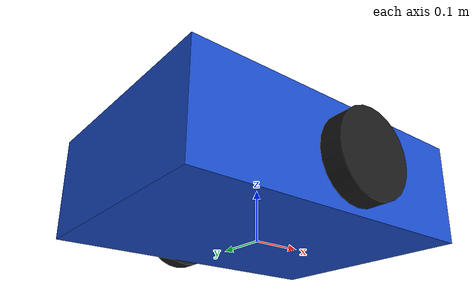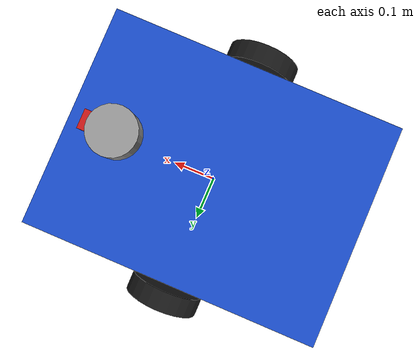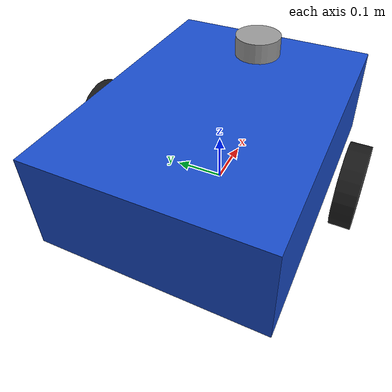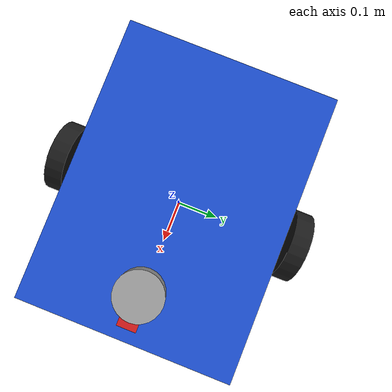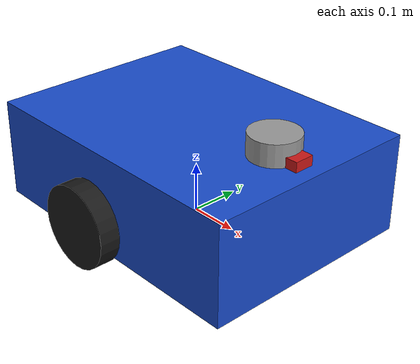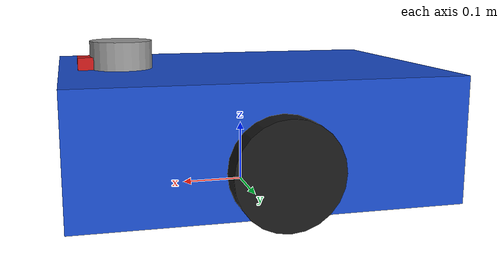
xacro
<?xml version="1.0"?>

<robot name="rovo_robot"
       xmlns:xacro="http://www.ros.org/wiki/xacro">

<xacro:include filename="$(find rovo_description)/urdf/materials.xacro"/>

<xacro:include filename="$(find rovo_description)/urdf/base.xacro"/>

<xacro:include filename="$(find rovo_description)/urdf/wheels.xacro"/>

<xacro:include filename="$(find rovo_description)/urdf/sensors.xacro"/>

<xacro:include filename="$(find rovo_description)/urdf/gazebo.xacro"/>

</robot>

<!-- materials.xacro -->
<robot xmlns:xacro="http://www.ros.org/wiki/xacro">

    <material name="blue">
        <color rgba="0.1 0.3 0.8 1"/>
    </material>

    <material name="black">
        <color rgba="0.1 0.1 0.1 1"/>
    </material>

    <material name="gray">
        <color rgba="0.6 0.6 0.6 1"/>
    </material>

    <material name="red">
        <color rgba="0.8 0.1 0.1 1"/>
    </material>

</robot>

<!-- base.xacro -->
<robot xmlns:xacro="http://www.ros.org/wiki/xacro">

<link name="base_link">

    <visual>

        <origin xyz="0 0 0.10"/>

        <geometry>

            <box size="0.60 0.45 0.20"/>

        </geometry>

        <material name="blue"/>

    </visual>

    <collision>

        <origin xyz="0 0 0.10"/>

        <geometry>

            <box size="0.60 0.45 0.20"/>

        </geometry>

    </collision>

    <inertial>

        <mass value="15"/>

        <origin xyz="0 0 0.10"/>

        <inertia
            ixx="0.5"
            iyy="0.5"
            izz="0.5"
            ixy="0"
            ixz="0"
            iyz="0"/>

    </inertial>

</link>

</robot>

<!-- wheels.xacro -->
<robot xmlns:xacro="http://www.ros.org/wiki/xacro">

<link name="left_wheel">

    <visual>
	<origin rpy="1.5708 0 0"/>
        <geometry>
            <cylinder radius="0.08" length="0.04"/>
        </geometry>
        <material name="black"/>
    </visual>

    <collision>
	<origin rpy="1.5708 0 0"/>
        <geometry>
            <cylinder radius="0.08" length="0.04"/>
        </geometry>
    </collision>

    <inertial>
        <mass value="1"/>
        <inertia
            ixx="0.001"
            ixy="0"
            ixz="0"
            iyy="0.001"
            iyz="0"
            izz="0.001"/>
    </inertial>

</link>

<link name="right_wheel">

    <visual>
	<origin rpy="1.5708 0 0"/>
        <geometry>
            <cylinder radius="0.08" length="0.04"/>
        </geometry>
        <material name="black"/>
    </visual>

    <collision>
	<origin rpy="1.5708 0 0"/>
        <geometry>
            <cylinder radius="0.08" length="0.04"/>
        </geometry>
    </collision>

    <inertial>
        <mass value="1"/>
        <inertia
            ixx="0.001"
            ixy="0"
            ixz="0"
            iyy="0.001"
            iyz="0"
            izz="0.001"/>
    </inertial>

</link>

<joint name="left_wheel_joint" type="continuous">

    <parent link="base_link"/>
    <child link="left_wheel"/>

    <origin xyz="0 0.27 0.08"/>

    <axis xyz="0 1 0"/>

</joint>

<joint name="right_wheel_joint" type="continuous">

    <parent link="base_link"/>
    <child link="right_wheel"/>

    <origin xyz="0 -0.27 0.08"/>

    <axis xyz="0 1 0"/>

</joint>

</robot>

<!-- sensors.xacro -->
<robot xmlns:xacro="http://www.ros.org/wiki/xacro">

  <!-- LiDAR -->
  <link name="lidar_link">

    <visual>
      <geometry>
        <cylinder radius="0.05" length="0.05"/>
      </geometry>
      <material name="gray"/>
    </visual>

    <collision>
      <geometry>
        <cylinder radius="0.05" length="0.05"/>
      </geometry>
    </collision>

    <inertial>
      <mass value="0.1"/>
      <inertia
        ixx="0.0001"
        ixy="0"
        ixz="0"
        iyy="0.0001"
        iyz="0"
        izz="0.0001"/>
    </inertial>

  </link>

  <joint name="lidar_joint" type="fixed">

    <parent link="base_link"/>
    <child link="lidar_link"/>

    <origin xyz="0.20 0 0.22"/>

  </joint>

  <!-- Camera -->
  <link name="camera_link">

    <visual>
      <geometry>
        <box size="0.04 0.04 0.04"/>
      </geometry>
      <material name="red"/>
    </visual>

    <collision>
      <geometry>
        <box size="0.04 0.04 0.04"/>
      </geometry>
    </collision>

    <inertial>
      <mass value="0.05"/>
      <inertia
        ixx="0.00001"
        ixy="0"
        ixz="0"
        iyy="0.00001"
        iyz="0"
        izz="0.00001"/>
    </inertial>

  </link>

  <joint name="camera_joint" type="fixed">

    <parent link="base_link"/>
    <child link="camera_link"/>

    <origin xyz="0.25 0 0.20"/>

  </joint>

</robot>
